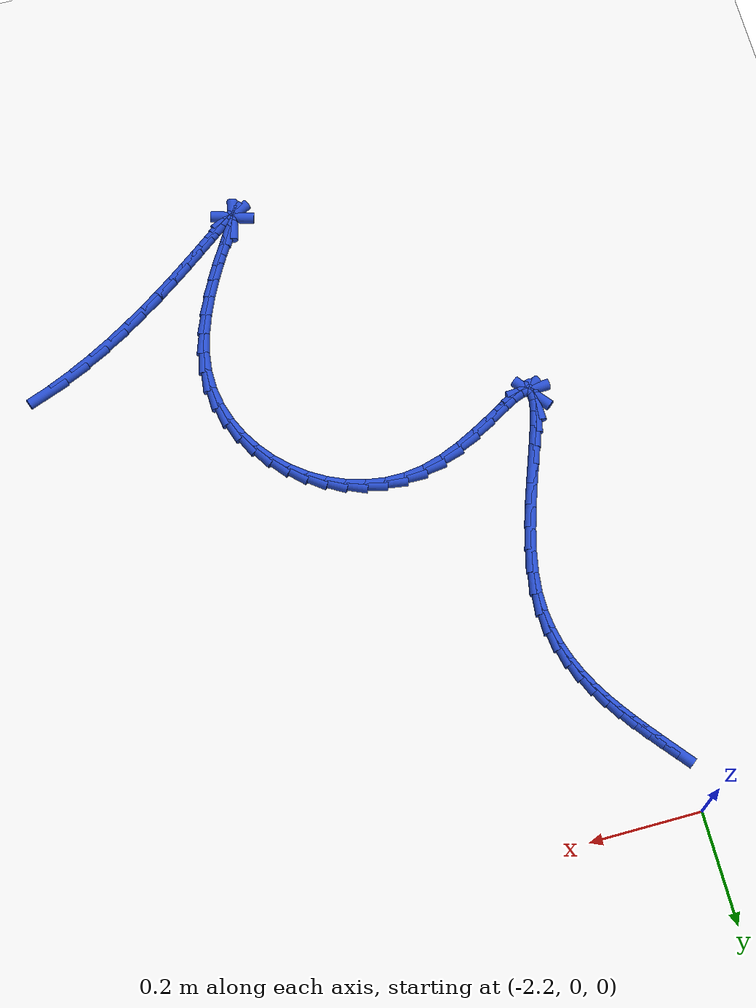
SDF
<sdf version="1.6">
 <world name="default">
  <model name="ground_plane">
   <static>1</static>
   <link name="link">
    <collision name="collision">
     <geometry><plane><normal>0 0 1</normal><size>100 100</size></plane></geometry>
     <surface><friction><ode><mu>100</mu><mu2>50</mu2></ode></friction></surface>
    </collision>
    <visual name="visual">
     <cast_shadows>0</cast_shadows>
     <geometry><plane><normal>0 0 1</normal><size>100 100</size></plane></geometry>
     <material>
      <script><uri>file://media/materials/scripts/gazebo.material</uri><name>Gazebo/WhiteGlow</name></script>
     </material>
    </visual>
   </link>
  </model>
  <model name="line">
   <link name="link_142">
    <pose>-2.1857994233108755 -0.11354275729905797 0.01 0 1.57 -0.8982728221596328</pose>
    <collision name="collision">
     <geometry><cylinder><radius>0.01</radius><length>0.08</length></cylinder></geometry>
    </collision>
    <visual name="visual">
     <material>
      <script><name>Gazebo/Blue</name><uri>file://media/materials/scripts/gazebo.material</uri></script>
     </material>
     <geometry><cylinder><radius>0.01</radius><length>0.08</length></cylinder></geometry>
    </visual>
   </link>
   <link name="link_143">
    <pose>-2.168123368866018 -0.13573854328041685 0.01 0 1.57 -0.906246966748328</pose>
    <collision name="collision">
     <geometry><cylinder><radius>0.01</radius><length>0.08</length></cylinder></geometry>
    </collision>
    <visual name="visual">
     <material>
      <script><name>Gazebo/Blue</name><uri>file://media/materials/scripts/gazebo.material</uri></script>
     </material>
     <geometry><cylinder><radius>0.01</radius><length>0.08</length></cylinder></geometry>
    </visual>
   </link>
   <link name="link_144">
    <pose>-2.1504459679705747 -0.15830292977359556 0.01 0 1.57 -0.921484170196584</pose>
    <collision name="collision">
     <geometry><cylinder><radius>0.01</radius><length>0.08</length></cylinder></geometry>
    </collision>
    <visual name="visual">
     <material>
      <script><name>Gazebo/Blue</name><uri>file://media/materials/scripts/gazebo.material</uri></script>
     </material>
     <geometry><cylinder><radius>0.01</radius><length>0.08</length></cylinder></geometry>
    </visual>
   </link>
   <link name="link_145">
    <pose>-2.1328577079762616 -0.18147221659744317 0.01 0 1.57 -0.9472718386608082</pose>
    <collision name="collision">
     <geometry><cylinder><radius>0.01</radius><length>0.08</length></cylinder></geometry>
    </collision>
    <visual name="visual">
     <material>
      <script><name>Gazebo/Blue</name><uri>file://media/materials/scripts/gazebo.material</uri></script>
     </material>
     <geometry><cylinder><radius>0.01</radius><length>0.08</length></cylinder></geometry>
    </visual>
   </link>
   <link name="link_146">
    <pose>-2.1156250885313477 -0.20543159254914273 0.01 0 1.57 -0.9861165676401255</pose>
    <collision name="collision">
     <geometry><cylinder><radius>0.01</radius><length>0.08</length></cylinder></geometry>
    </collision>
    <visual name="visual">
     <material>
      <script><name>Gazebo/Blue</name><uri>file://media/materials/scripts/gazebo.material</uri></script>
     </material>
     <geometry><cylinder><radius>0.01</radius><length>0.08</length></cylinder></geometry>
    </visual>
   </link>
   <link name="link_147">
    <pose>-2.099146808211887 -0.23032785807236686 0.01 0 1.57 -1.0379220103728988</pose>
    <collision name="collision">
     <geometry><cylinder><radius>0.01</radius><length>0.08</length></cylinder></geometry>
    </collision>
    <visual name="visual">
     <material>
      <script><name>Gazebo/Blue</name><uri>file://media/materials/scripts/gazebo.material</uri></script>
     </material>
     <geometry><cylinder><radius>0.01</radius><length>0.08</length></cylinder></geometry>
    </visual>
   </link>
   <link name="link_148">
    <pose>-2.0838247811781763 -0.25630687985900424 0.01 0 1.57 -1.1024541434797133</pose>
    <collision name="collision">
     <geometry><cylinder><radius>0.01</radius><length>0.08</length></cylinder></geometry>
    </collision>
    <visual name="visual">
     <material>
      <script><name>Gazebo/Blue</name><uri>file://media/materials/scripts/gazebo.material</uri></script>
     </material>
     <geometry><cylinder><radius>0.01</radius><length>0.08</length></cylinder></geometry>
    </visual>
   </link>
   <link name="link_149">
    <pose>-2.070060921590513 -0.28351452460094345 0.01 0 1.57 -1.179152763859066</pose>
    <collision name="collision">
     <geometry><cylinder><radius>0.01</radius><length>0.08</length></cylinder></geometry>
    </collision>
    <visual name="visual">
     <material>
      <script><name>Gazebo/Blue</name><uri>file://media/materials/scripts/gazebo.material</uri></script>
     </material>
     <geometry><cylinder><radius>0.01</radius><length>0.08</length></cylinder></geometry>
    </visual>
   </link>
   <link name="link_150">
    <pose>-2.0582571436091945 -0.31209665899007316 0.01 0 1.57 -1.2668600016934306</pose>
    <collision name="collision">
     <geometry><cylinder><radius>0.01</radius><length>0.08</length></cylinder></geometry>
    </collision>
    <visual name="visual">
     <material>
      <script><name>Gazebo/Blue</name><uri>file://media/materials/scripts/gazebo.material</uri></script>
     </material>
     <geometry><cylinder><radius>0.01</radius><length>0.08</length></cylinder></geometry>
    </visual>
   </link>
   <link name="link_151">
    <pose>-2.0488153613945177 -0.34219914971828197 0.01 0 1.57 -1.3636099151794705</pose>
    <collision name="collision">
     <geometry><cylinder><radius>0.01</radius><length>0.08</length></cylinder></geometry>
    </collision>
    <visual name="visual">
     <material>
      <script><name>Gazebo/Blue</name><uri>file://media/materials/scripts/gazebo.material</uri></script>
     </material>
     <geometry><cylinder><radius>0.01</radius><length>0.08</length></cylinder></geometry>
    </visual>
   </link>
   <link name="link_152">
    <pose>-2.0421374891067794 -0.3739678634774575 0.01 0 1.57 -1.466590165228331</pose>
    <collision name="collision">
     <geometry><cylinder><radius>0.01</radius><length>0.08</length></cylinder></geometry>
    </collision>
    <visual name="visual">
     <material>
      <script><name>Gazebo/Blue</name><uri>file://media/materials/scripts/gazebo.material</uri></script>
     </material>
     <geometry><cylinder><radius>0.01</radius><length>0.08</length></cylinder></geometry>
    </visual>
   </link>
   <link name="link_153">
    <pose>-2.0386254409062765 -0.4075486669594902 0.01 0 1.57 1.5692293052778625</pose>
    <collision name="collision">
     <geometry><cylinder><radius>0.01</radius><length>0.08</length></cylinder></geometry>
    </collision>
    <visual name="visual">
     <material>
      <script><name>Gazebo/Blue</name><uri>file://media/materials/scripts/gazebo.material</uri></script>
     </material>
     <geometry><cylinder><radius>0.01</radius><length>0.08</length></cylinder></geometry>
    </visual>
   </link>
   <link name="link_154">
    <pose>-2.038681130953307 -0.44308742685626795 0.01 0 1.57 1.4645613283073944</pose>
    <collision name="collision">
     <geometry><cylinder><radius>0.01</radius><length>0.08</length></cylinder></geometry>
    </collision>
    <visual name="visual">
     <material>
      <script><name>Gazebo/Blue</name><uri>file://media/materials/scripts/gazebo.material</uri></script>
     </material>
     <geometry><cylinder><radius>0.01</radius><length>0.08</length></cylinder></geometry>
    </visual>
   </link>
   <link name="link_155">
    <pose>-2.0426941725538885 -0.4807203481283368 0.01 0 1.57 1.3751084312185744</pose>
    <collision name="collision">
     <geometry><cylinder><radius>0.01</radius><length>0.08</length></cylinder></geometry>
    </collision>
    <visual name="visual">
     <material>
      <script><name>Gazebo/Blue</name><uri>file://media/materials/scripts/gazebo.material</uri></script>
     </material>
     <geometry><cylinder><radius>0.01</radius><length>0.08</length></cylinder></geometry>
    </visual>
   </link>
   <link name="link_156">
    <pose>-2.050511577244684 -0.5201574480583196 0.01 0 1.57 1.311123389513998</pose>
    <collision name="collision">
     <geometry><cylinder><radius>0.01</radius><length>0.08</length></cylinder></geometry>
    </collision>
    <visual name="visual">
     <material>
      <script><name>Gazebo/Blue</name><uri>file://media/materials/scripts/gazebo.material</uri></script>
     </material>
     <geometry><cylinder><radius>0.01</radius><length>0.08</length></cylinder></geometry>
    </visual>
   </link>
   <link name="link_157">
    <pose>-2.0612357945435695 -0.5605239261568059 0.01 0 1.57 1.2665316878280524</pose>
    <collision name="collision">
     <geometry><cylinder><radius>0.01</radius><length>0.08</length></cylinder></geometry>
    </collision>
    <visual name="visual">
     <material>
      <script><name>Gazebo/Blue</name><uri>file://media/materials/scripts/gazebo.material</uri></script>
     </material>
     <geometry><cylinder><radius>0.01</radius><length>0.08</length></cylinder></geometry>
    </visual>
   </link>
   <link name="link_158">
    <pose>-2.073915309052417 -0.6009025950798998 0.01 0 1.57 1.2371147330243741</pose>
    <collision name="collision">
     <geometry><cylinder><radius>0.01</radius><length>0.08</length></cylinder></geometry>
    </collision>
    <visual name="visual">
     <material>
      <script><name>Gazebo/Blue</name><uri>file://media/materials/scripts/gazebo.material</uri></script>
     </material>
     <geometry><cylinder><radius>0.01</radius><length>0.08</length></cylinder></geometry>
    </visual>
   </link>
   <link name="link_159">
    <pose>-2.0875986053730986 -0.6403762674837058 0.01 0 1.57 1.2209909449945728</pose>
    <collision name="collision">
     <geometry><cylinder><radius>0.01</radius><length>0.08</length></cylinder></geometry>
    </collision>
    <visual name="visual">
     <material>
      <script><name>Gazebo/Blue</name><uri>file://media/materials/scripts/gazebo.material</uri></script>
     </material>
     <geometry><cylinder><radius>0.01</radius><length>0.08</length></cylinder></geometry>
    </visual>
   </link>
   <link name="link_160">
    <pose>-2.1013341681074857 -0.6780277560243276 0.01 0 1.57 1.218462962662877</pose>
    <collision name="collision">
     <geometry><cylinder><radius>0.01</radius><length>0.08</length></cylinder></geometry>
    </collision>
    <visual name="visual">
     <material>
      <script><name>Gazebo/Blue</name><uri>file://media/materials/scripts/gazebo.material</uri></script>
     </material>
     <geometry><cylinder><radius>0.01</radius><length>0.08</length></cylinder></geometry>
    </visual>
   </link>
   <link name="link_161">
    <pose>-2.114170481857452 -0.7129398733578699 0.01 0 1.57 1.2328080285229641</pose>
    <collision name="collision">
     <geometry><cylinder><radius>0.01</radius><length>0.08</length></cylinder></geometry>
    </collision>
    <visual name="visual">
     <material>
      <script><name>Gazebo/Blue</name><uri>file://media/materials/scripts/gazebo.material</uri></script>
     </material>
     <geometry><cylinder><radius>0.01</radius><length>0.08</length></cylinder></geometry>
    </visual>
   </link>
   <link name="link_162">
    <pose>-2.125156031224867 -0.7441954321404363 0.01 0 1.57 1.2732055877129176</pose>
    <collision name="collision">
     <geometry><cylinder><radius>0.01</radius><length>0.08</length></cylinder></geometry>
    </collision>
    <visual name="visual">
     <material>
      <script><name>Gazebo/Blue</name><uri>file://media/materials/scripts/gazebo.material</uri></script>
     </material>
     <geometry><cylinder><radius>0.01</radius><length>0.08</length></cylinder></geometry>
    </visual>
   </link>
   <link name="link_163">
    <pose>-2.1333393008116044 -0.7708772450281317 0.01 0 1.57 1.3647358376442666</pose>
    <collision name="collision">
     <geometry><cylinder><radius>0.01</radius><length>0.08</length></cylinder></geometry>
    </collision>
    <visual name="visual">
     <material>
      <script><name>Gazebo/Blue</name><uri>file://media/materials/scripts/gazebo.material</uri></script>
     </material>
     <geometry><cylinder><radius>0.01</radius><length>0.08</length></cylinder></geometry>
    </visual>
   </link>
   <link name="link_164">
    <pose>-2.1377687752195365 -0.7920681246770598 0.01 0 1.57 -1.5521391761358052</pose>
    <collision name="collision">
     <geometry><cylinder><radius>0.01</radius><length>0.08</length></cylinder></geometry>
    </collision>
    <visual name="visual">
     <material>
      <script><name>Gazebo/Blue</name><uri>file://media/materials/scripts/gazebo.material</uri></script>
     </material>
     <geometry><cylinder><radius>0.01</radius><length>0.08</length></cylinder></geometry>
    </visual>
   </link>
   <link name="link_165">
    <pose>-2.1374929390505337 -0.8068508837433249 0.01 0 1.57 -0.8987839841075762</pose>
    <collision name="collision">
     <geometry><cylinder><radius>0.01</radius><length>0.08</length></cylinder></geometry>
    </collision>
    <visual name="visual">
     <material>
      <script><name>Gazebo/Blue</name><uri>file://media/materials/scripts/gazebo.material</uri></script>
     </material>
     <geometry><cylinder><radius>0.01</radius><length>0.08</length></cylinder></geometry>
    </visual>
   </link>
   <link name="link_166">
    <pose>-2.131560276906469 -0.8143083348830312 0.01 0 1.57 0.04805988216059309</pose>
    <collision name="collision">
     <geometry><cylinder><radius>0.01</radius><length>0.08</length></cylinder></geometry>
    </collision>
    <visual name="visual">
     <material>
      <script><name>Gazebo/Blue</name><uri>file://media/materials/scripts/gazebo.material</uri></script>
     </material>
     <geometry><cylinder><radius>0.01</radius><length>0.08</length></cylinder></geometry>
    </visual>
   </link>
   <link name="link_167">
    <pose>-2.119144096334342 -0.8137111548577292 0.01 0 1.57 0.391642928227906</pose>
    <collision name="collision">
     <geometry><cylinder><radius>0.01</radius><length>0.08</length></cylinder></geometry>
    </collision>
    <visual name="visual">
     <material>
      <script><name>Gazebo/Blue</name><uri>file://media/materials/scripts/gazebo.material</uri></script>
     </material>
     <geometry><cylinder><radius>0.01</radius><length>0.08</length></cylinder></geometry>
    </visual>
   </link>
   <link name="link_168">
    <pose>-2.100548214755613 -0.8060314882644464 0.01 0 1.57 0.4949694652697694</pose>
    <collision name="collision">
     <geometry><cylinder><radius>0.01</radius><length>0.08</length></cylinder></geometry>
    </collision>
    <visual name="visual">
     <material>
      <script><name>Gazebo/Blue</name><uri>file://media/materials/scripts/gazebo.material</uri></script>
     </material>
     <geometry><cylinder><radius>0.01</radius><length>0.08</length></cylinder></geometry>
    </visual>
   </link>
   <link name="link_169">
    <pose>-2.076677774103454 -0.7931464999379587 0.01 0 1.57 0.521036552305101</pose>
    <collision name="collision">
     <geometry><cylinder><radius>0.01</radius><length>0.08</length></cylinder></geometry>
    </collision>
    <visual name="visual">
     <material>
      <script><name>Gazebo/Blue</name><uri>file://media/materials/scripts/gazebo.material</uri></script>
     </material>
     <geometry><cylinder><radius>0.01</radius><length>0.08</length></cylinder></geometry>
    </visual>
   </link>
   <link name="link_170">
    <pose>-2.0484434894629677 -0.7769417425555257 0.01 0 1.57 0.5079386530914523</pose>
    <collision name="collision">
     <geometry><cylinder><radius>0.01</radius><length>0.08</length></cylinder></geometry>
    </collision>
    <visual name="visual">
     <material>
      <script><name>Gazebo/Blue</name><uri>file://media/materials/scripts/gazebo.material</uri></script>
     </material>
     <geometry><cylinder><radius>0.01</radius><length>0.08</length></cylinder></geometry>
    </visual>
   </link>
   <link name="link_171">
    <pose>-2.016756075919259 -0.7593027687944089 0.01 0 1.57 0.4653458229165073</pose>
    <collision name="collision">
     <geometry><cylinder><radius>0.01</radius><length>0.08</length></cylinder></geometry>
    </collision>
    <visual name="visual">
     <material>
      <script><name>Gazebo/Blue</name><uri>file://media/materials/scripts/gazebo.material</uri></script>
     </material>
     <geometry><cylinder><radius>0.01</radius><length>0.08</length></cylinder></geometry>
    </visual>
   </link>
   <link name="link_172">
    <pose>-1.9825262485574326 -0.7421151313318693 0.01 0 1.57 0.3926138224443687</pose>
    <collision name="collision">
     <geometry><cylinder><radius>0.01</radius><length>0.08</length></cylinder></geometry>
    </collision>
    <visual name="visual">
     <material>
      <script><name>Gazebo/Blue</name><uri>file://media/materials/scripts/gazebo.material</uri></script>
     </material>
     <geometry><cylinder><radius>0.01</radius><length>0.08</length></cylinder></geometry>
    </visual>
   </link>
   <link name="link_173">
    <pose>-1.9466647224625921 -0.7272643828451677 0.01 0 1.57 0.28276850823249733</pose>
    <collision name="collision">
     <geometry><cylinder><radius>0.01</radius><length>0.08</length></cylinder></geometry>
    </collision>
    <visual name="visual">
     <material>
      <script><name>Gazebo/Blue</name><uri>file://media/materials/scripts/gazebo.material</uri></script>
     </material>
     <geometry><cylinder><radius>0.01</radius><length>0.08</length></cylinder></geometry>
    </visual>
   </link>
   <link name="link_174">
    <pose>-1.9100819870038084 -0.7166351172104961 0.01 0 1.57 0.13801872891024336</pose>
    <collision name="collision">
     <geometry><cylinder><radius>0.01</radius><length>0.08</length></cylinder></geometry>
    </collision>
    <visual name="visual">
     <material>
      <script><name>Gazebo/Blue</name><uri>file://media/materials/scripts/gazebo.material</uri></script>
     </material>
     <geometry><cylinder><radius>0.01</radius><length>0.08</length></cylinder></geometry>
    </visual>
   </link>
   <link name="link_175">
    <pose>-1.8735590743599606 -0.7115620174694854 0.01 0 1.57 -0.009658632145875904</pose>
    <collision name="collision">
     <geometry><cylinder><radius>0.01</radius><length>0.08</length></cylinder></geometry>
    </collision>
    <visual name="visual">
     <material>
      <script><name>Gazebo/Blue</name><uri>file://media/materials/scripts/gazebo.material</uri></script>
     </material>
     <geometry><cylinder><radius>0.01</radius><length>0.08</length></cylinder></geometry>
    </visual>
   </link>
   <link name="link_176">
    <pose>-1.8375310141459547 -0.7119100100714035 0.01 0 1.57 -0.15216486618100214</pose>
    <collision name="collision">
     <geometry><cylinder><radius>0.01</radius><length>0.08</length></cylinder></geometry>
    </collision>
    <visual name="visual">
     <material>
      <script><name>Gazebo/Blue</name><uri>file://media/materials/scripts/gazebo.material</uri></script>
     </material>
     <geometry><cylinder><radius>0.01</radius><length>0.08</length></cylinder></geometry>
    </visual>
   </link>
   <link name="link_177">
    <pose>-1.802375647418983 -0.7173010947694075 0.01 0 1.57 -0.2883347069409558</pose>
    <collision name="collision">
     <geometry><cylinder><radius>0.01</radius><length>0.08</length></cylinder></geometry>
    </collision>
    <visual name="visual">
     <material>
      <script><name>Gazebo/Blue</name><uri>file://media/materials/scripts/gazebo.material</uri></script>
     </material>
     <geometry><cylinder><radius>0.01</radius><length>0.08</length></cylinder></geometry>
    </visual>
   </link>
   <link name="link_178">
    <pose>-1.7684708152362345 -0.727357271316654 0.01 0 1.57 -0.4181771470266221</pose>
    <collision name="collision">
     <geometry><cylinder><radius>0.01</radius><length>0.08</length></cylinder></geometry>
    </collision>
    <visual name="visual">
     <material>
      <script><name>Gazebo/Blue</name><uri>file://media/materials/scripts/gazebo.material</uri></script>
     </material>
     <geometry><cylinder><radius>0.01</radius><length>0.08</length></cylinder></geometry>
    </visual>
   </link>
   <link name="link_179">
    <pose>-1.7361943586549005 -0.7417005394662998 0.01 0 1.57 -0.5426080442812298</pose>
    <collision name="collision">
     <geometry><cylinder><radius>0.01</radius><length>0.08</length></cylinder></geometry>
    </collision>
    <visual name="visual">
     <material>
      <script><name>Gazebo/Blue</name><uri>file://media/materials/scripts/gazebo.material</uri></script>
     </material>
     <geometry><cylinder><radius>0.01</radius><length>0.08</length></cylinder></geometry>
    </visual>
   </link>
   <link name="link_180">
    <pose>-1.7059241187321714 -0.759952898971502 0.01 0 1.57 -0.663144441000298</pose>
    <collision name="collision">
     <geometry><cylinder><radius>0.01</radius><length>0.08</length></cylinder></geometry>
    </collision>
    <visual name="visual">
     <material>
      <script><name>Gazebo/Blue</name><uri>file://media/materials/scripts/gazebo.material</uri></script>
     </material>
     <geometry><cylinder><radius>0.01</radius><length>0.08</length></cylinder></geometry>
    </visual>
   </link>
   <link name="link_181">
    <pose>-1.6780379365252378 -0.7817363495854174 0.01 0 1.57 -0.7816479040212431</pose>
    <collision name="collision">
     <geometry><cylinder><radius>0.01</radius><length>0.08</length></cylinder></geometry>
    </collision>
    <visual name="visual">
     <material>
      <script><name>Gazebo/Blue</name><uri>file://media/materials/scripts/gazebo.material</uri></script>
     </material>
     <geometry><cylinder><radius>0.01</radius><length>0.08</length></cylinder></geometry>
    </visual>
   </link>
   <link name="link_182">
    <pose>-1.652913653091291 -0.806672891061203 0.01 0 1.57 -0.9001340608210779</pose>
    <collision name="collision">
     <geometry><cylinder><radius>0.01</radius><length>0.08</length></cylinder></geometry>
    </collision>
    <visual name="visual">
     <material>
      <script><name>Gazebo/Blue</name><uri>file://media/materials/scripts/gazebo.material</uri></script>
     </material>
     <geometry><cylinder><radius>0.01</radius><length>0.08</length></cylinder></geometry>
    </visual>
   </link>
   <link name="link_183">
    <pose>-1.630929109487521 -0.8343845231520158 0.01 0 1.57 -1.0206237983455158</pose>
    <collision name="collision">
     <geometry><cylinder><radius>0.01</radius><length>0.08</length></cylinder></geometry>
    </collision>
    <visual name="visual">
     <material>
      <script><name>Gazebo/Blue</name><uri>file://media/materials/scripts/gazebo.material</uri></script>
     </material>
     <geometry><cylinder><radius>0.01</radius><length>0.08</length></cylinder></geometry>
    </visual>
   </link>
   <link name="link_184">
    <pose>-1.6124621467711189 -0.8644932456110114 0.01 0 1.57 -1.1449948819076574</pose>
    <collision name="collision">
     <geometry><cylinder><radius>0.01</radius><length>0.08</length></cylinder></geometry>
    </collision>
    <visual name="visual">
     <material>
      <script><name>Gazebo/Blue</name><uri>file://media/materials/scripts/gazebo.material</uri></script>
     </material>
     <geometry><cylinder><radius>0.01</radius><length>0.08</length></cylinder></geometry>
    </visual>
   </link>
   <link name="link_185">
    <pose>-1.5978906059992735 -0.8966210581913483 0.01 0 1.57 -1.2747922393518558</pose>
    <collision name="collision">
     <geometry><cylinder><radius>0.01</radius><length>0.08</length></cylinder></geometry>
    </collision>
    <visual name="visual">
     <material>
      <script><name>Gazebo/Blue</name><uri>file://media/materials/scripts/gazebo.material</uri></script>
     </material>
     <geometry><cylinder><radius>0.01</radius><length>0.08</length></cylinder></geometry>
    </visual>
   </link>
   <link name="link_186">
    <pose>-1.5875923282291773 -0.9303899606461834 0.01 0 1.57 -1.4109707758385466</pose>
    <collision name="collision">
     <geometry><cylinder><radius>0.01</radius><length>0.08</length></cylinder></geometry>
    </collision>
    <visual name="visual">
     <material>
      <script><name>Gazebo/Blue</name><uri>file://media/materials/scripts/gazebo.material</uri></script>
     </material>
     <geometry><cylinder><radius>0.01</radius><length>0.08</length></cylinder></geometry>
    </visual>
   </link>
   <link name="link_187">
    <pose>-1.5819451545180205 -0.965421952728673 0.01 0 1.57 -1.553585364063113</pose>
    <collision name="collision">
     <geometry><cylinder><radius>0.01</radius><length>0.08</length></cylinder></geometry>
    </collision>
    <visual name="visual">
     <material>
      <script><name>Gazebo/Blue</name><uri>file://media/materials/scripts/gazebo.material</uri></script>
     </material>
     <geometry><cylinder><radius>0.01</radius><length>0.08</length></cylinder></geometry>
    </visual>
   </link>
   <link name="link_188">
    <pose>-1.5813269259229934 -1.001339034191974 0.01 0 1.57 1.4444151776984864</pose>
    <collision name="collision">
     <geometry><cylinder><radius>0.01</radius><length>0.08</length></cylinder></geometry>
    </collision>
    <visual name="visual">
     <material>
      <script><name>Gazebo/Blue</name><uri>file://media/materials/scripts/gazebo.material</uri></script>
     </material>
     <geometry><cylinder><radius>0.01</radius><length>0.08</length></cylinder></geometry>
    </visual>
   </link>
   <link name="link_189">
    <pose>-1.5859509890098065 -1.0377322625581034 0.01 0 1.57 1.3243112027843607</pose>
    <collision name="collision">
     <geometry><cylinder><radius>0.01</radius><length>0.08</length></cylinder></geometry>
    </collision>
    <visual name="visual">
     <material>
      <script><name>Gazebo/Blue</name><uri>file://media/materials/scripts/gazebo.material</uri></script>
     </material>
     <geometry><cylinder><radius>0.01</radius><length>0.08</length></cylinder></geometry>
    </visual>
   </link>
   <link name="link_190">
    <pose>-1.5950794589994355 -1.0740137640069296 0.01 0 1.57 1.2310487102885586</pose>
    <collision name="collision">
     <geometry><cylinder><radius>0.01</radius><length>0.08</length></cylinder></geometry>
    </collision>
    <visual name="visual">
     <material>
      <script><name>Gazebo/Blue</name><uri>file://media/materials/scripts/gazebo.material</uri></script>
     </material>
     <geometry><cylinder><radius>0.01</radius><length>0.08</length></cylinder></geometry>
    </visual>
   </link>
   <link name="link_191">
    <pose>-1.6076333048511193 -1.1095314934114995 0.01 0 1.57 1.1588732967647213</pose>
    <collision name="collision">
     <geometry><cylinder><radius>0.01</radius><length>0.08</length></cylinder></geometry>
    </collision>
    <visual name="visual">
     <material>
      <script><name>Gazebo/Blue</name><uri>file://media/materials/scripts/gazebo.material</uri></script>
     </material>
     <geometry><cylinder><radius>0.01</radius><length>0.08</length></cylinder></geometry>
    </visual>
   </link>
   <link name="link_192">
    <pose>-1.622533056428458 -1.1436333230487892 0.01 0 1.57 1.1034274576794065</pose>
    <collision name="collision">
     <geometry><cylinder><radius>0.01</radius><length>0.08</length></cylinder></geometry>
    </collision>
    <visual name="visual">
     <material>
      <script><name>Gazebo/Blue</name><uri>file://media/materials/scripts/gazebo.material</uri></script>
     </material>
     <geometry><cylinder><radius>0.01</radius><length>0.08</length></cylinder></geometry>
    </visual>
   </link>
   <link name="link_193">
    <pose>-1.6386992435950505 -1.175667125195774 0.01 0 1.57 1.061932317700166</pose>
    <collision name="collision">
     <geometry><cylinder><radius>0.01</radius><length>0.08</length></cylinder></geometry>
    </collision>
    <visual name="visual">
     <material>
      <script><name>Gazebo/Blue</name><uri>file://media/materials/scripts/gazebo.material</uri></script>
     </material>
     <geometry><cylinder><radius>0.01</radius><length>0.08</length></cylinder></geometry>
    </visual>
   </link>
   <link name="link_194">
    <pose>-1.6550523962144958 -1.2049807721294297 0.01 0 1.57 1.0333347142520575</pose>
    <collision name="collision">
     <geometry><cylinder><radius>0.01</radius><length>0.08</length></cylinder></geometry>
    </collision>
    <visual name="visual">
     <material>
      <script><name>Gazebo/Blue</name><uri>file://media/materials/scripts/gazebo.material</uri></script>
     </material>
     <geometry><cylinder><radius>0.01</radius><length>0.08</length></cylinder></geometry>
    </visual>
   </link>
   <link name="link_195">
    <pose>-1.6705130441503933 -1.2309221361267313 0.01 0 1.57 1.019097753365439</pose>
    <collision name="collision">
     <geometry><cylinder><radius>0.01</radius><length>0.08</length></cylinder></geometry>
    </collision>
    <visual name="visual">
     <material>
      <script><name>Gazebo/Blue</name><uri>file://media/materials/scripts/gazebo.material</uri></script>
     </material>
     <geometry><cylinder><radius>0.01</radius><length>0.08</length></cylinder></geometry>
    </visual>
   </link>
   <link name="link_196">
    <pose>-1.6840017172663424 -1.2528390894646546 0.01 0 1.57 1.0264207493033721</pose>
    <collision name="collision">
     <geometry><cylinder><radius>0.01</radius><length>0.08</length></cylinder></geometry>
    </collision>
    <visual name="visual">
     <material>
      <script><name>Gazebo/Blue</name><uri>file://media/materials/scripts/gazebo.material</uri></script>
     </material>
     <geometry><cylinder><radius>0.01</radius><length>0.08</length></cylinder></geometry>
    </visual>
   </link>
   <link name="link_197">
    <pose>-1.6944389454259419 -1.2700795044201751 0.01 0 1.57 1.08381049812531</pose>
    <collision name="collision">
     <geometry><cylinder><radius>0.01</radius><length>0.08</length></cylinder></geometry>
    </collision>
    <visual name="visual">
     <material>
      <script><name>Gazebo/Blue</name><uri>file://media/materials/scripts/gazebo.material</uri></script>
     </material>
     <geometry><cylinder><radius>0.01</radius><length>0.08</length></cylinder></geometry>
    </visual>
   </link>
   <link name="link_198">
    <pose>-1.7007475534901502 -1.2819932690349272 0.01 0 1.57 1.3376193751676766</pose>
    <collision name="collision">
     <geometry><cylinder><radius>0.01</radius><length>0.08</length></cylinder></geometry>
    </collision>
    <visual name="visual">
     <material>
      <script><name>Gazebo/Blue</name><uri>file://media/materials/scripts/gazebo.material</uri></script>
     </material>
     <geometry><cylinder><radius>0.01</radius><length>0.08</length></cylinder></geometry>
    </visual>
   </link>
   <link name="link_199">
    <pose>-1.7022385488072758 -1.2882712236118177 0.01 0 1.57 -0.31910287789959924</pose>
    <collision name="collision">
     <geometry><cylinder><radius>0.01</radius><length>0.08</length></cylinder></geometry>
    </collision>
    <visual name="visual">
     <material>
      <script><name>Gazebo/Blue</name><uri>file://media/materials/scripts/gazebo.material</uri></script>
     </material>
     <geometry><cylinder><radius>0.01</radius><length>0.08</length></cylinder></geometry>
    </visual>
   </link>
   <link name="link_200">
    <pose>-1.69904508584356 -1.2893263247987512 0.01 0 1.57 0.44705052770304327</pose>
    <collision name="collision">
     <geometry><cylinder><radius>0.01</radius><length>0.08</length></cylinder></geometry>
    </collision>
    <visual name="visual">
     <material>
      <script><name>Gazebo/Blue</name><uri>file://media/materials/scripts/gazebo.material</uri></script>
     </material>
     <geometry><cylinder><radius>0.01</radius><length>0.08</length></cylinder></geometry>
    </visual>
   </link>
   <link name="link_201">
    <pose>-1.6914050550095538 -1.2856635219486439 0.01 0 1.57 0.5866352123548542</pose>
    <collision name="collision">
     <geometry><cylinder><radius>0.01</radius><length>0.08</length></cylinder></geometry>
    </collision>
    <visual name="visual">
     <material>
      <script><name>Gazebo/Blue</name><uri>file://media/materials/scripts/gazebo.material</uri></script>
     </material>
     <geometry><cylinder><radius>0.01</radius><length>0.08</length></cylinder></geometry>
    </visual>
   </link>
   <link name="link_202">
    <pose>-1.6795563467158072 -1.27778776441441 0.01 0 1.57 0.6320414152877392</pose>
    <collision name="collision">
     <geometry><cylinder><radius>0.01</radius><length>0.08</length></cylinder></geometry>
    </collision>
    <visual name="visual">
     <material>
      <script><name>Gazebo/Blue</name><uri>file://media/materials/scripts/gazebo.material</uri></script>
     </material>
     <geometry><cylinder><radius>0.01</radius><length>0.08</length></cylinder></geometry>
    </visual>
   </link>
   <link name="link_203">
    <pose>-1.6637368513728725 -1.2662040015489655 0.01 0 1.57 0.6474996134888664</pose>
    <collision name="collision">
     <geometry><cylinder><radius>0.01</radius><length>0.08</length></cylinder></geometry>
    </collision>
    <visual name="visual">
     <material>
      <script><name>Gazebo/Blue</name><uri>file://media/materials/scripts/gazebo.material</uri></script>
     </material>
     <geometry><cylinder><radius>0.01</radius><length>0.08</length></cylinder></geometry>
    </visual>
   </link>
   <link name="link_204">
    <pose>-1.6441844593913002 -1.2514171827052254 0.01 0 1.57 0.6490146256383379</pose>
    <collision name="collision">
     <geometry><cylinder><radius>0.01</radius><length>0.08</length></cylinder></geometry>
    </collision>
    <visual name="visual">
     <material>
      <script><name>Gazebo/Blue</name><uri>file://media/materials/scripts/gazebo.material</uri></script>
     </material>
     <geometry><cylinder><radius>0.01</radius><length>0.08</length></cylinder></geometry>
    </visual>
   </link>
   <link name="link_205">
    <pose>-1.6211370611816411 -1.2339322572361056 0.01 0 1.57 0.642276096971298</pose>
    <collision name="collision">
     <geometry><cylinder><radius>0.01</radius><length>0.08</length></cylinder></geometry>
    </collision>
    <visual name="visual">
     <material>
      <script><name>Gazebo/Blue</name><uri>file://media/materials/scripts/gazebo.material</uri></script>
     </material>
     <geometry><cylinder><radius>0.01</radius><length>0.08</length></cylinder></geometry>
    </visual>
   </link>
   <link name="link_206">
    <pose>-1.5948325471544462 -1.214254174494521 0.01 0 1.57 0.629686436943765</pose>
    <collision name="collision">
     <geometry><cylinder><radius>0.01</radius><length>0.08</length></cylinder></geometry>
    </collision>
    <visual name="visual">
     <material>
      <script><name>Gazebo/Blue</name><uri>file://media/materials/scripts/gazebo.material</uri></script>
     </material>
     <geometry><cylinder><radius>0.01</radius><length>0.08</length></cylinder></geometry>
    </visual>
   </link>
   <link name="link_207">
    <pose>-1.565508807720267 -1.1928878838333872 0.01 0 1.57 0.6123128811811486</pose>
    <collision name="collision">
     <geometry><cylinder><radius>0.01</radius><length>0.08</length></cylinder></geometry>
    </collision>
    <visual name="visual">
     <material>
      <script><name>Gazebo/Blue</name><uri>file://media/materials/scripts/gazebo.material</uri></script>
     </material>
     <geometry><cylinder><radius>0.01</radius><length>0.08</length></cylinder></geometry>
    </visual>
   </link>
   <link name="link_208">
    <pose>-1.5334037332896537 -1.1703383346056186 0.01 0 1.57 0.5905726378985114</pose>
    <collision name="collision">
     <geometry><cylinder><radius>0.01</radius><length>0.08</length></cylinder></geometry>
    </collision>
    <visual name="visual">
     <material>
      <script><name>Gazebo/Blue</name><uri>file://media/materials/scripts/gazebo.material</uri></script>
     </material>
     <geometry><cylinder><radius>0.01</radius><length>0.08</length></cylinder></geometry>
    </visual>
   </link>
   <link name="link_209">
    <pose>-1.4987552142731584 -1.1471104761641322 0.01 0 1.57 0.5645109086539386</pose>
    <collision name="collision">
     <geometry><cylinder><radius>0.01</radius><length>0.08</length></cylinder></geometry>
    </collision>
    <visual name="visual">
     <material>
      <script><name>Gazebo/Blue</name><uri>file://media/materials/scripts/gazebo.material</uri></script>
     </material>
     <geometry><cylinder><radius>0.01</radius><length>0.08</length></cylinder></geometry>
    </visual>
   </link>
   <link name="link_210">
    <pose>-1.4618011410813316 -1.1237092578618424 0.01 0 1.57 0.5339233651188272</pose>
    <collision name="collision">
     <geometry><cylinder><radius>0.01</radius><length>0.08</length></cylinder></geometry>
    </collision>
    <visual name="visual">
     <material>
      <script><name>Gazebo/Blue</name><uri>file://media/materials/scripts/gazebo.material</uri></script>
     </material>
     <geometry><cylinder><radius>0.01</radius><length>0.08</length></cylinder></geometry>
    </visual>
   </link>
   <link name="link_211">
    <pose>-1.4227794041247246 -1.1006396290516645 0.01 0 1.57 0.4984114013604182</pose>
    <collision name="collision">
     <geometry><cylinder><radius>0.01</radius><length>0.08</length></cylinder></geometry>
    </collision>
    <visual name="visual">
     <material>
      <script><name>Gazebo/Blue</name><uri>file://media/materials/scripts/gazebo.material</uri></script>
     </material>
     <geometry><cylinder><radius>0.01</radius><length>0.08</length></cylinder></geometry>
    </visual>
   </link>
   <link name="link_212">
    <pose>-1.3819278938138873 -1.0784065390865136 0.01 0 1.57 0.45740643668875425</pose>
    <collision name="collision">
     <geometry><cylinder><radius>0.01</radius><length>0.08</length></cylinder></geometry>
    </collision>
    <visual name="visual">
     <material>
      <script><name>Gazebo/Blue</name><uri>file://media/materials/scripts/gazebo.material</uri></script>
     </material>
     <geometry><cylinder><radius>0.01</radius><length>0.08</length></cylinder></geometry>
    </visual>
   </link>
   <link name="link_213">
    <pose>-1.3394845005593718 -1.0575149373193058 0.01 0 1.57 0.41018153953916714</pose>
    <collision name="collision">
     <geometry><cylinder><radius>0.01</radius><length>0.08</length></cylinder></geometry>
    </collision>
    <visual name="visual">
     <material>
      <script><name>Gazebo/Blue</name><uri>file://media/materials/scripts/gazebo.material</uri></script>
     </material>
     <geometry><cylinder><radius>0.01</radius><length>0.08</length></cylinder></geometry>
    </visual>
   </link>
   <link name="link_214">
    <pose>-1.29568711477173 -1.0384697731029564 0.01 0 1.57 0.35586331029615975</pose>
    <collision name="collision">
     <geometry><cylinder><radius>0.01</radius><length>0.08</length></cylinder></geometry>
    </collision>
    <visual name="visual">
     <material>
      <script><name>Gazebo/Blue</name><uri>file://media/materials/scripts/gazebo.material</uri></script>
     </material>
     <geometry><cylinder><radius>0.01</radius><length>0.08</length></cylinder></geometry>
    </visual>
   </link>
  </model>
 </world>
</sdf>
